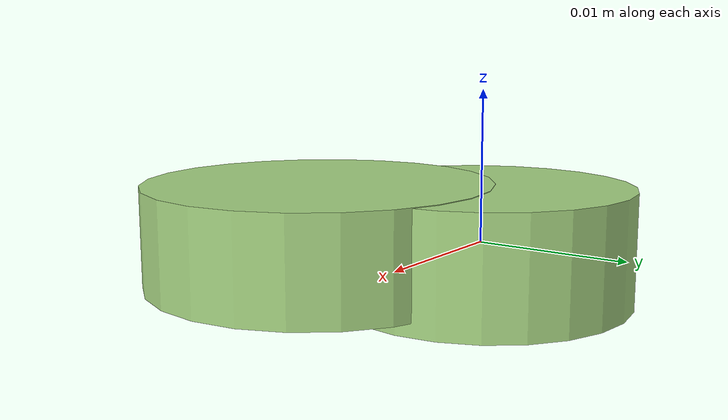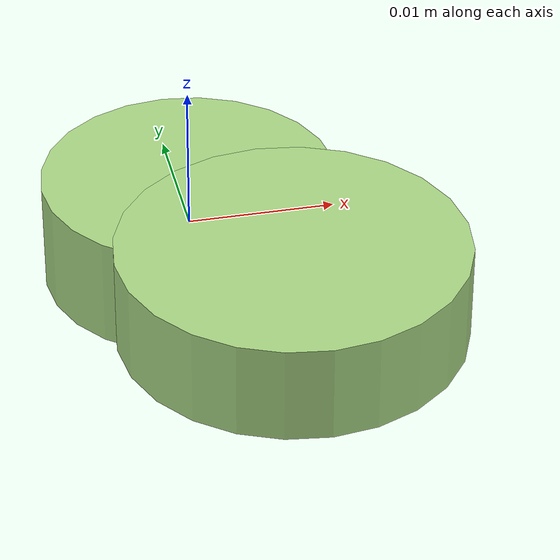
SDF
<?xml version="1.0" ?>
<!-- |    This document was autogenerated by xmacro from data/veggie_template/veggie_base.sdf.xacro  | -->
<!-- |    EDITING THIS FILE BY HAND IS NOT RECOMMENDED                                               | -->
<sdf version="1.8">
	<!-- Parameters -->
	<!-- Base -->
	<!-- Joint 0 -->
	<!-- Link 1 -->
	<!-- Joint 1 -->
	<!-- Link 2 -->
	<!-- Primitives -->
	<!-- All dimensions are half -->
	<!-- Object -->
	<model name="veggie">
		<!-- link0 -->
		<link name="link0">
			<inertial>
				<mass>0.0023542521198065916</mass>
				<inertia>
					<ixx>6.955585153001485e-08</ixx>
					<ixy>0</ixy>
					<ixz>0</ixz>
					<iyy>6.955585153001485e-08</iyy>
					<iyz>0</iyz>
					<izz>1.1668866198976173e-07</izz>
				</inertia>
			</inertial>
			<visual name="link0_visual">
				<pose>0 0 0 0 0 0</pose>
				<geometry>
					<cylinder>
						<radius>0.009956411614991327</radius>
						<length>0.007559557875490436</length>
					</cylinder>
				</geometry>
				<material>
					<ambient>0.659 0.839 0.514 1</ambient>
					<diffuse>0.659 0.839 0.514 1</diffuse>
					<specular>0 0 0 0</specular>
					<emissive>0 0 0 1</emissive>
				</material>
			</visual>
			<collision name="link0_collision">
				<pose>0 0 0 0 0 0 </pose>
				<geometry>
					<cylinder>
						<radius>0.009956411614991327</radius>
						<length>0.007559557875490436</length>
					</cylinder>
				</geometry>
			</collision>
		</link>
		<!-- link1 -->
		<joint name="joint0" type="fixed">
			<pose relative_to="link0">0.005071008325598211 -0.009546315766055132 0.0004536428052355452 0.0 0.0 0.0</pose>
			<parent>link0</parent>
			<child>link1</child>
		</joint>
		<link name="link1">
			<pose relative_to="joint0">0 0 0 0 0 0</pose>
			<inertial>
				<mass>0.0029085878321175487</mass>
				<inertia>
					<ixx>1.1082585438935558e-07</ixx>
					<ixy>0</ixy>
					<ixz>0</ixz>
					<iyy>1.1082585438935558e-07</iyy>
					<iyz>0</iyz>
					<izz>1.9959122649954774e-07</izz>
				</inertia>
			</inertial>
			<visual name="link1_visual">
				<pose>0 0 0 0 0 0</pose>
				<geometry>
					<cylinder>
						<radius>0.011715063037421638</radius>
						<length>0.006745933179023456</length>
					</cylinder>
				</geometry>
				<material>
					<ambient>0.659 0.839 0.514 1</ambient>
					<diffuse>0.659 0.839 0.514 1</diffuse>
					<specular>0 0 0 0</specular>
					<emissive>0 0 0 1</emissive>
				</material>
			</visual>
			<collision name="link1_collision">
				<pose>0 0 0 0 0 0 </pose>
				<geometry>
					<cylinder>
						<radius>0.011715063037421638</radius>
						<length>0.006745933179023456</length>
					</cylinder>
				</geometry>
			</collision>
		</link>
		<!-- link2 -->
	</model>
</sdf>
